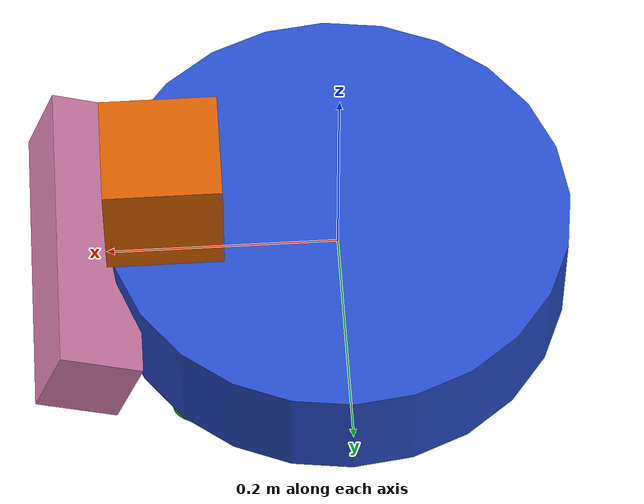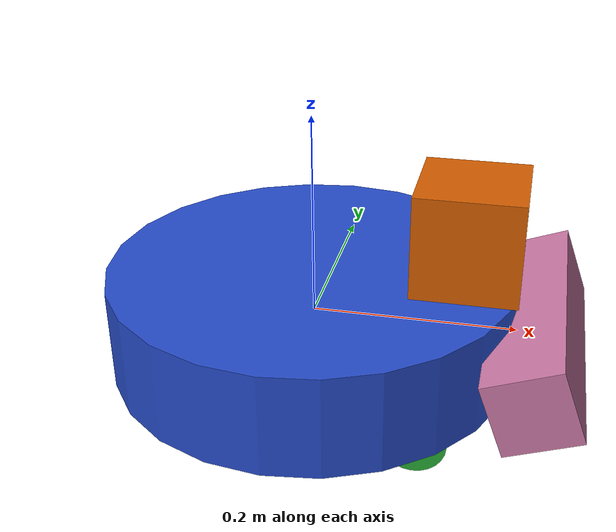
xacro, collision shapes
<?xml version='1.0'?>

<robot name="sweeping_bot" xmlns:xacro="http://www.ros.org/wiki/xacro">

  <xacro:include filename="$(find sweeping_bot)/urdf/sweeping_bot.gazebo" />
  <xacro:property name="M_PI" value="3.1415926535897931" />

  <link name="robot_footprint"></link>

  <joint name="robot_footprint_joint" type="fixed">
    <origin xyz="0 0 0" rpy="0 0 0" />
    <parent link="robot_footprint"/>
    <child link="chassis" />
  </joint>

  <link name='chassis'>
    <pose>0 0 0.1 0 0 0</pose>

    <inertial>
      <mass value="15.0"/>
      <origin xyz="0.0 0 0" rpy=" 0 0 0"/>
      <inertia
          ixx="0.1" ixy="0" ixz="0"
          iyy="0.1" iyz="0"
          izz="0.1"
      />
    </inertial>

    <collision name='collision'>
      <origin xyz="0 0 0" rpy=" 0 0 0"/>
      <geometry>
        <cylinder radius="0.2" length="0.1"/>
      </geometry>
    </collision>

    <visual name='chassis_visual'>
      <origin xyz="0 0 0" rpy=" 0 0 0"/>
      <geometry>
        <cylinder radius="0.2" length="0.1"/>
      </geometry>
    </visual>
  </link>

  <link name='left_wheel'>

    <inertial>
      <mass value="3.0"/>
      <origin xyz="0.0 0 0" rpy=" 0 1.5707 1.5707"/>
      <inertia
          ixx="0.1" ixy="0" ixz="0"
          iyy="0.1" iyz="0"
          izz="0.1"
      />
    </inertial>

    <collision name='left_wheel_collision'>
      <origin xyz="0 0 0" rpy=" 0 1.5707 1.5707"/>
      <geometry>
        <cylinder length="0.02" radius="0.03"/>
      </geometry>
    </collision>

    <visual name='left_wheel_visual'>
      <origin xyz="0 0 0" rpy=" 0 1.5707 1.5707"/>
      <geometry>
        <cylinder length="0.02" radius="0.03"/>
      </geometry>
    </visual>
  </link>

  <link name='right_wheel'>

    <inertial>
      <mass value="3.0"/>
      <origin xyz="0.0 0 0" rpy=" 0 1.5707 1.5707"/>
      <inertia
          ixx="0.1" ixy="0" ixz="0"
          iyy="0.1" iyz="0"
          izz="0.1"
      />
    </inertial>

    <collision name='right_wheel_collision'>
      <origin xyz="0 0 0" rpy=" 0 1.5707 1.5707"/>
      <geometry>
        <cylinder length="0.02" radius="0.03"/>
      </geometry>
    </collision>

    <visual name='right_wheel_visual'>
      <origin xyz="0 0 0" rpy=" 0 1.5707 1.5707"/>
      <geometry>
        <cylinder length="0.02" radius="0.03"/>
      </geometry>
    </visual>
  </link>

  <link name='back_wheel'>

    <inertial>
      <mass value="3.0"/>
      <origin xyz="0.0 0 0" rpy=" 0 1.5707 1.5707"/>
      <inertia
          ixx="0.1" ixy="0" ixz="0"
          iyy="0.1" iyz="0"
          izz="0.1"
      />
    </inertial>

    <collision name='back_wheel_collision'>
      <origin xyz="0 0 0" rpy=" 0 1.5707 1.5707"/>
      <geometry>
        <cylinder length="0.02" radius="0.03"/>
      </geometry>
    </collision>

    <visual name='back_wheel_visual'>
      <origin xyz="0 0 0" rpy=" 0 1.5707 1.5707"/>
      <geometry>
        <cylinder length="0.02" radius="0.03"/>
      </geometry>
    </visual>
  </link>

  <link name='hokuyo'>

    <inertial>
      <mass value="0.1"/>
      <origin xyz="0 0 0" rpy=" 0 0 0"/>
      <inertia
          ixx="1e-6" ixy="0" ixz="0"
          iyy="1e-6" iyz="0"
          izz="1e-6"
      />
    </inertial>

    <collision name='hokuyo_collision'>
      <origin xyz="0 0 0" rpy=" 0 0 0"/>
      <geometry>
        <box size="0.1 0.1 0.1"/>
      </geometry>
    </collision>

    <visual name='hokuyo_visual'>
      <origin xyz="0 0 0" rpy=" 0 0 0"/>
      <geometry>
        <mesh filename="package://sweeping_bot/meshes/hokuyo.dae"/>
      </geometry>
    </visual>
  </link>

  <joint type="continuous" name="left_wheel_hinge">
    <origin xyz="0.12 0.12 -0.05" rpy="0 0 0"/>
    <child link="left_wheel"/>
    <parent link="chassis"/>
    <axis xyz="0 1 0" rpy="0 0 0"/>
    <limit effort="10000" velocity="1000"/>
    <joint_properties damping="1.0" friction="1.0"/>
  </joint>

  <joint type="continuous" name="right_wheel_hinge">
    <origin xyz="0.12 -0.12 -0.05" rpy="0 0 0"/>
    <child link="right_wheel"/>
    <parent link="chassis"/>
    <axis xyz="0 1 0" rpy="0 0 0"/>
    <limit effort="10000" velocity="1000"/>
    <joint_properties damping="1.0" friction="1.0"/>
  </joint>

  <joint type="continuous" name="back_wheel_hinge">
    <origin xyz="-0.15 0 -0.05" rpy="0 0 0"/>
    <child link="back_wheel"/>
    <parent link="chassis"/>
    <axis xyz="0 1 0" rpy="0 0 0"/>
    <limit effort="10000" velocity="1000"/>
    <joint_properties damping="1.0" friction="1.0"/>
  </joint>

  <joint type="fixed" name="hokuyo_joint">
    <origin xyz="0.15 0 0.1" rpy="0 0 0"/>
    <child link="hokuyo"/>
    <parent link="chassis"/>
    <limit effort="10000" velocity="1000"/>
    <joint_properties damping="1.0" friction="1.0"/>
  </joint>

  <joint name="base_camera_joint" type="fixed">
    <origin xyz="0.22 0 0" rpy="0 -0.349 0" />
    <parent link="chassis" />
    <child link="camera" />
  </joint>

  <link name="camera">
    <inertial>
      <mass value="0.01" />
      <origin xyz="0 0 0" />
      <inertia ixx="0.001" ixy="0.0" ixz="0.0"
        iyy="0.001" iyz="0.0"
        izz="0.001" />
    </inertial>

    <visual>
      <origin xyz=" 0 0 0 " rpy="0 0 0" />
      <geometry>
        <mesh filename="package://sweeping_bot/meshes/kinect.dae"/>
      </geometry>
    </visual>

    <collision>
      <origin xyz="0.0 0.0 0.0" rpy="0 0 0" />
      <geometry>
        <box size="0.0730 .2760 0.0720"/>
      </geometry>
    </collision>

  </link>

  <joint name="camera_depth_joint" type="fixed">
    <origin xyz="0 0.011 0" rpy="0 0 0" />
    <parent link="camera" />
    <child link="camera_depth_frame" />
  </joint>

  <link name="camera_depth_frame">
    <inertial>
      <mass value="0.01" />
      <origin xyz="0 0 0" />
      <inertia ixx="0.001" ixy="0.0" ixz="0.0"
        iyy="0.001" iyz="0.0"
        izz="0.001" />
    </inertial>
  </link>

  <joint name="camera_depth_optical_joint" type="fixed">
    <origin xyz="0 0 0" rpy="${-M_PI/2} 0 ${-M_PI/2}" />
    <parent link="camera_depth_frame" />
    <child link="camera_depth_optical_frame" />
  </joint>

  <link name="camera_depth_optical_frame">
    <inertial>
      <mass value="0.001" />
      <origin xyz="0 0 0" />
      <inertia ixx="0.0001" ixy="0.0" ixz="0.0"
        iyy="0.0001" iyz="0.0"
        izz="0.0001" />
    </inertial>
  </link>

  <joint name="camera_rgb_joint" type="fixed">
    <origin xyz="0 -0.012 0" rpy="0 0 0" />
    <parent link="camera" />
    <child link="camera_rgb_frame" />
  </joint>

  <link name="camera_rgb_frame">
    <inertial>
      <mass value="0.001" />
      <origin xyz="0 0 0" />
      <inertia ixx="0.0001" ixy="0.0" ixz="0.0"
        iyy="0.0001" iyz="0.0"
        izz="0.0001" />
    </inertial>
  </link>

  <joint name="camera_rgb_optical_joint" type="fixed">
    <origin xyz="0 0 0" rpy="${-M_PI/2} 0 ${-M_PI/2}" />
    <parent link="camera_rgb_frame" />
    <child link="camera_rgb_optical_frame" />
  </joint>

  <link name="camera_rgb_optical_frame">
    <inertial>
      <mass value="0.001" />
      <origin xyz="0 0 0" />
      <inertia ixx="0.0001" ixy="0.0" ixz="0.0"
        iyy="0.0001" iyz="0.0"
        izz="0.0001" />
    </inertial>
  </link>
</robot>
